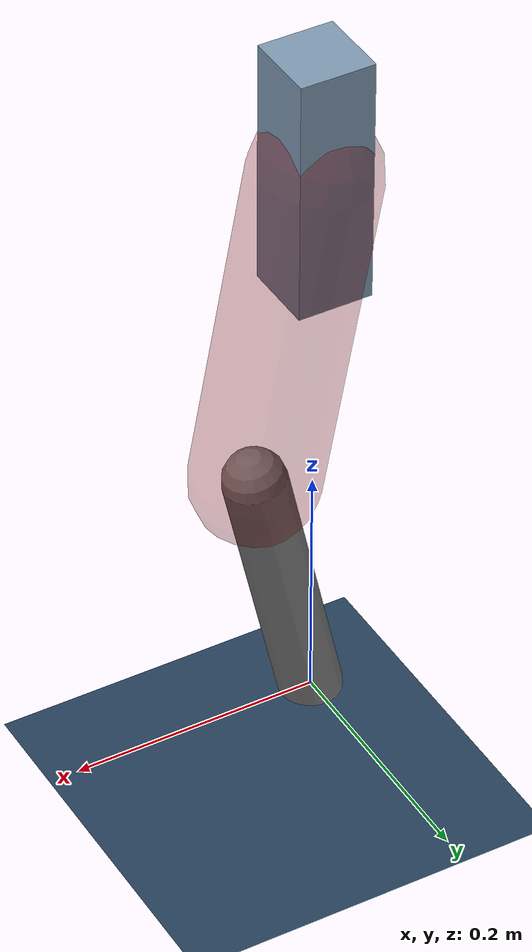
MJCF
<mujoco model="Hopper2D">
	<compiler inertiafromgeom="true" angle="radian" />
	<option timestep="0.001" integrator="implicit" cone="elliptic" solver="Newton" tolerance="1e-10" />

	<default>
		<geom contype="1" conaffinity="1" condim="3" friction="2 0.005 0.0001" solref="0.005 1" />
		<joint limited="true" damping="0.1" />
	</default>

	<asset>
		<texture name="skybox" type="skybox" builtin="gradient" rgb1=".4 .6 .8" rgb2="0 0 0" width="800" height="800" />
		<texture name="grid" type="2d" builtin="checker" rgb1=".1 .2 .3" rgb2=".2 .3 .4" width="300" height="300" mark="edge" markrgb=".2 .3 .4" />
		<material name="ground" texture="grid" texrepeat="1 1" texuniform="true" reflectance="0.1" />
		<material name="leg" rgba="0.5 0.6 0.7 1" />
	</asset>

	<worldbody>

		<geom name="floor" type="plane" size="5 5 0.25" material="ground" />

		<light directional="false" diffuse="0.8 0.8 0.8" specular="0.3 0.3 0.3" pos="0 0 2" dir="0 0 -1" />
		<light mode="targetbodycom" target="base" directional="false" diffuse="0.8 0.8 0.8" specular="0.3 0.3 0.3" pos="0 0 2" dir="0 0 -1" />

		<camera name="fixed" pos="0 -2 1" xyaxes="1 0 0 0 0 1" />
		<camera name="tracking" mode="trackcom" pos="0 -3 1" />

		<body name="root" pos="0 0 0.48046513289909376">
			<joint name="slide_x" type="slide" axis="1 0 0" range="-100 100" />
			<joint name="slide_z" type="slide" axis="0 0 1" range="0 10" />

			<body name="base" pos="0 0 0">
				<geom name="torso" type="box" size="0.03 0.03 0.1" mass="2.4130000000000003" material="leg" />

				<body name="link1" pos="0 0 0" euler="0 1.3842047984637187 0">
					<joint type="hinge" axis="0 -1 0" pos="0 0 0" name="hinge1" limited="true" range="-3.14 3.14" stiffness="0" damping="0.1" />
					<geom name="thigh" type="capsule" fromto="0 0 0 0.2647058843111993 0 0" size="0.05" rgba="0.5 0 0 0.3" mass="0.8947352992091181" />

					<body name="link2" pos="0.2647058843111993 0 0" euler="0 0.40585815011422915 0">
						<joint type="hinge" axis="0 -1 0" pos="0 0 0" name="hinge2" limited="true" range="-3.14 3.14" stiffness="0" damping="0.1" />
						<geom name="shank" type="capsule" fromto="0 0 0 0.2257592485878945 0 0" size="0.025" mass="0.4224833237291051" />

					</body>
				</body>
			</body>
		</body>
	</worldbody>

	<actuator>
		<motor name="torque1" joint="hinge1" ctrlrange="-75.85369141823432 75.85369141823432" ctrllimited="true" gear="1" />
		<motor name="torque2" joint="hinge2" ctrlrange="-101.27334488797688 101.27334488797688" ctrllimited="true" gear="1" />
	</actuator>
</mujoco>
